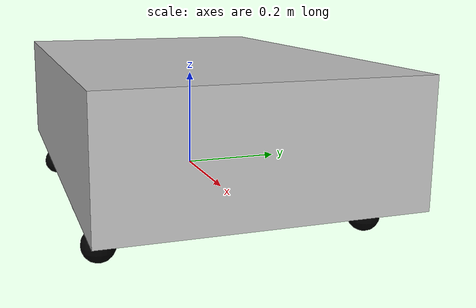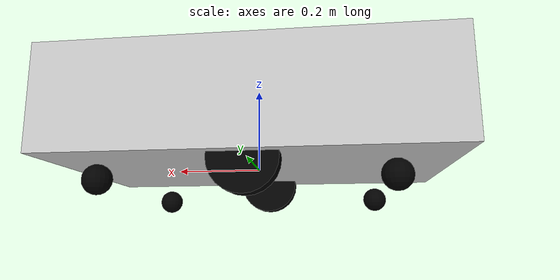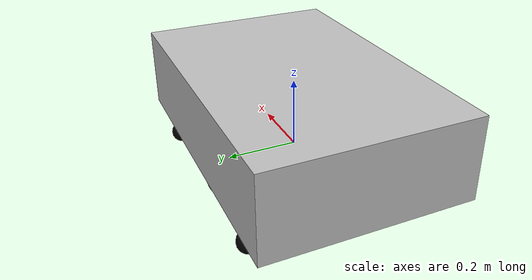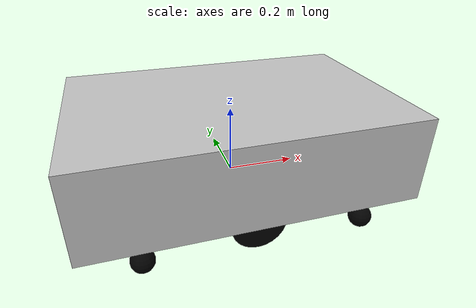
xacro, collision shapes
<?xml version="1.0"?>
<robot xmlns:xacro="http://www.ros.org/wiki/xacro"  name="robot">

    <xacro:arg name="use_ros2_control" default="true"/>
    <xacro:arg name="sim_mode" default="true"/>

    <xacro:include filename="p.urdf.xacro" />

    <xacro:if value="$(arg use_ros2_control)">
        <xacro:include filename="ros2_control.xacro" />
    </xacro:if>
    <xacro:unless value="$(arg use_ros2_control)">
        <xacro:include filename="gazebo_control.xacro" />
    </xacro:unless>
    <xacro:include filename="lidar2.xacro" />

</robot>

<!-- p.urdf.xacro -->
<robot name="agv_with_casters" xmlns:xacro="http://www.ros.org/wiki/xacro">

  <xacro:property name="pi" value="3.1415926535897931"/>

  <!-- ================= inertia macro ================= -->
  <xacro:macro name="inertial_cylinder" params="mass length radius">
    <inertial>
      <mass value="${mass}" />
      <inertia
        ixx="${(1/12) * mass * (3*radius*radius + length*length)}"
        ixy="0.0" ixz="0.0"
        iyy="${(1/12) * mass * (3*radius*radius + length*length)}"
        iyz="0.0"
        izz="${(1/2) * mass * (radius*radius)}" />
    </inertial>
  </xacro:macro>

  <!-- ================= materials ================= -->
  <material name="black"><color rgba="0 0 0 1"/></material>
  <material name="silver"><color rgba="0.75 0.75 0.75 1"/></material>

  <!-- ================= base_link (NO PHYSICS) ================= -->
  <link name="base_link"/>

  <!-- ================= chassis (PHYSICS BODY) ================= -->
  <joint name="base_to_chassis" type="fixed">
    <parent link="base_link"/>
    <child link="chassis_link"/>
  </joint>

  <link name="chassis_link">
    <visual>
      <geometry><box size="0.900 0.590 0.24"/></geometry>
      <origin xyz="0 0 0.12"/>
      <material name="silver"/>
    </visual>
    <collision>
      <geometry><box size="0.900 0.590 0.24"/></geometry>
      <origin xyz="0 0 0.12"/>
    </collision>
    <inertial>
      <mass value="20.0"/>
      <origin xyz="0 0 0.12"/>
      <inertia
        ixx="1.2"
        ixy="0.0" ixz="0.0"
        iyy="2.0"
        iyz="0.0"
        izz="2.5"/>
    </inertial>
  </link>

  <!-- ================= caster macro ================= -->
  <xacro:macro name="caster" params="name x y">
    <link name="${name}_link">
      <visual>
        <geometry><sphere radius="0.0315"/></geometry>
        <material name="black"/>
      </visual>
      <collision>
        <geometry><sphere radius="0.0315"/></geometry>
      </collision>
      <inertial>
        <mass value="0.3"/>
        <inertia
          ixx="0.0001"
          ixy="0.0" ixz="0.0"
          iyy="0.0001"
          iyz="0.0"
          izz="0.0001"/>
      </inertial>
    </link>

    <joint name="${name}_joint" type="fixed">
      <parent link="chassis_link"/>
      <child link="${name}_link"/>
      <origin xyz="${x} ${y} -0.052"/>
    </joint>

    <gazebo reference="${name}_link">
      <mu1>0.2</mu1>
      <mu2>0.2</mu2>
    </gazebo>
  </xacro:macro>

  <!-- ================= casters ================= -->
  <xacro:caster name="caster_fr" x="0.2993"  y="-0.260"/>
  <xacro:caster name="caster_fl" x="0.2993"  y="0.260"/>
  <xacro:caster name="caster_rr" x="-0.2993" y="-0.260"/>
  <xacro:caster name="caster_rl" x="-0.2993" y="0.260"/>

  <!-- ================= right wheel ================= -->
  <link name="right_wheel">
    <visual>
      <geometry><cylinder radius="0.075" length="0.05"/></geometry>
      <material name="black"/>
    </visual>
    <collision>
      <geometry><cylinder radius="0.075" length="0.05"/></geometry>
    </collision>
    <xacro:inertial_cylinder mass="0.5" length="0.05" radius="0.075"/>
  </link>
    <gazebo reference="right_wheel">
        <material>Gazebo/Black</material>
    </gazebo>
  <joint name="right_wheel_joint" type="continuous">
    <parent link="chassis_link"/>
    <child link="right_wheel"/>
    <origin xyz="0 -0.2397 -0.00973" rpy="${pi/2} 0 0"/>
    <axis xyz="0 0 -1"/>
  </joint>

  <!-- ================= left wheel ================= -->
  <link name="left_wheel">
    <visual>
      <geometry><cylinder radius="0.075" length="0.05"/></geometry>
      <material name="black"/>
    </visual>
    <collision>
      <geometry><cylinder radius="0.075" length="0.05"/></geometry>
    </collision>
    <xacro:inertial_cylinder mass="0.5" length="0.05" radius="0.075"/>
  </link>
    <gazebo reference="left_wheel">
        <material>Gazebo/Black</material>
    </gazebo>

  <joint name="left_wheel_joint" type="continuous">
    <parent link="chassis_link"/>
    <child link="left_wheel"/>
    <origin xyz="0 0.2397 -0.00973" rpy="-${pi/2} 0 0"/>
    <axis xyz="0 0 1"/>
  </joint>

</robot>

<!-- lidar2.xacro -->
<robot xmlns:xacro="http://www.ros.org/wiki/xacro">

    <material name="orange">
        <color rgba="1.0 0.5 0.0 1.0"/>
    </material>

    <joint name="laser_joint" type="fixed">
     <parent link="chassis_link"/>
     <child link="laser_frame"/>
     <origin xyz="0.29 0 0.11" rpy="0 0 0"/>
    </joint>

    <link name="laser_frame">
      <visual>
       <geometry>
        <mesh filename="package://robot_kmutnb/meshes/hokuyo.dae"/>
       </geometry>
       <material name="orange"/>
      </visual>
    </link>

    <gazebo reference="laser_frame">
        <material>Gazebo/Orange</material>
        <sensor name="laser" type="gpu_lidar">
            <pose> 0 0 0 0 0 0 </pose>
            <visualize>true</visualize>
            <update_rate>10</update_rate>
            <lidar>
                <scan>
                    <horizontal>
                        <samples>180</samples>
                        <min_angle>-1.57</min_angle>
                        <max_angle>1.57</max_angle>
                    </horizontal>
                </scan>
                <range>
                    <min>0.3</min>
                    <max>20</max>
                </range>
            </lidar>
                <topic>scan</topic>
                <gz_frame_id>laser_frame</gz_frame_id>
        </sensor>
    </gazebo>
</robot>
